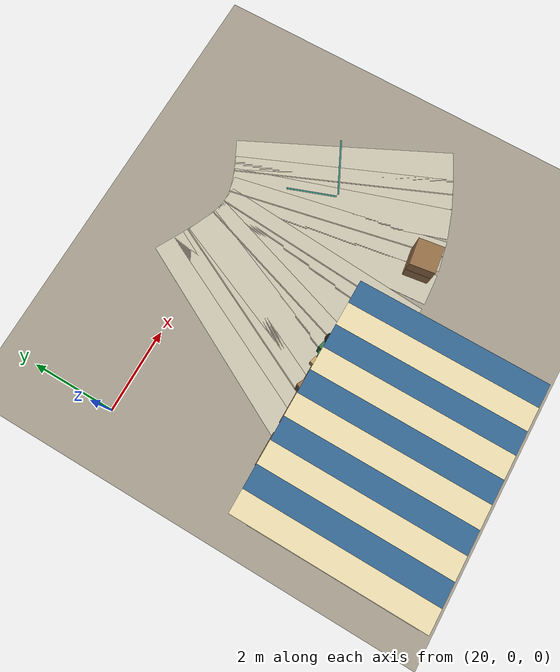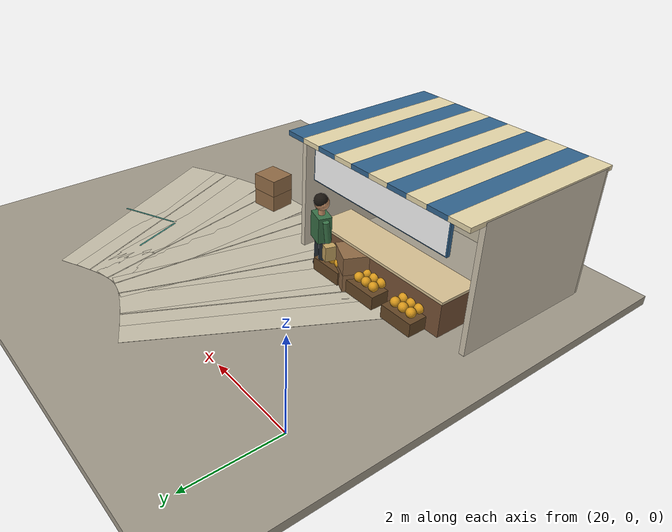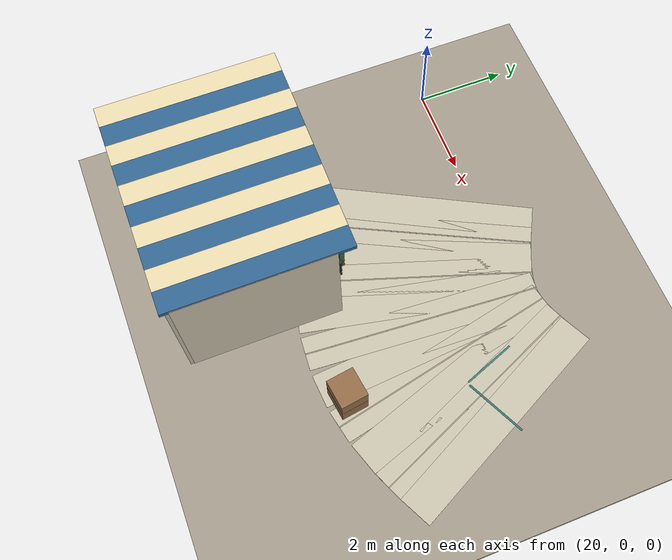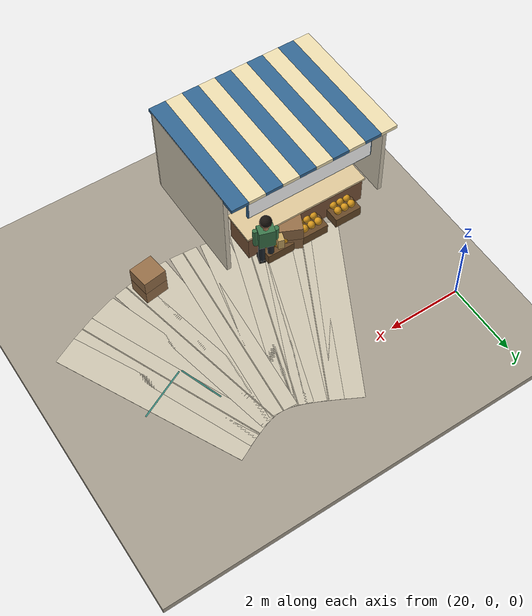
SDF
<sdf version="1.10">
 <world name="swan_market">
  <model name="ground">
   <static>true</static>
   <pose>15 0 -0.1 0 0 0</pose>
   <link name="body">
    <collision name="box_collision"><geometry><box><size>46 24 0.2</size></box></geometry></collision>
    <visual name="box_visual">
     <geometry><box><size>46 24 0.2</size></box></geometry>
     <material><ambient>0.64 0.61 0.55 1</ambient><diffuse>0.64 0.61 0.55 1</diffuse></material>
    </visual>
   </link>
  </model>
  <model name="market_paving_49">
   <static>true</static>
   <pose>22.75 -1.2978 0.002 0 0 -0.48699</pose>
   <link name="body">
    <visual name="box_visual">
     <geometry><box><size>0.75 5.2 0.004</size></box></geometry>
     <material><ambient>0.79 0.76 0.68 1</ambient><diffuse>0.79 0.76 0.68 1</diffuse></material>
    </visual>
   </link>
  </model>
  <model name="market_paving_50">
   <static>true</static>
   <pose>23.25 -1.5562 0.002 0 0 -0.46221</pose>
   <link name="body">
    <visual name="box_visual">
     <geometry><box><size>0.75 5.2 0.004</size></box></geometry>
     <material><ambient>0.79 0.76 0.68 1</ambient><diffuse>0.79 0.76 0.68 1</diffuse></material>
    </visual>
   </link>
  </model>
  <model name="paving_joint_50">
   <static>true</static>
   <pose>23.25 -1.5562 0.0045 0 0 -0.46221</pose>
   <link name="body">
    <visual name="box_visual">
     <geometry><box><size>0.025 5.2 0.001</size></box></geometry>
     <material><ambient>0.67 0.64 0.57 1</ambient><diffuse>0.67 0.64 0.57 1</diffuse></material>
    </visual>
   </link>
  </model>
  <model name="market_paving_51">
   <static>true</static>
   <pose>23.75 -1.7901 0.002 0 0 -0.40758</pose>
   <link name="body">
    <visual name="box_visual">
     <geometry><box><size>0.75 5.2 0.004</size></box></geometry>
     <material><ambient>0.79 0.76 0.68 1</ambient><diffuse>0.79 0.76 0.68 1</diffuse></material>
    </visual>
   </link>
  </model>
  <model name="market_paving_52">
   <static>true</static>
   <pose>24.25 -1.9827 0.002 0 0 -0.32217</pose>
   <link name="body">
    <visual name="box_visual">
     <geometry><box><size>0.75 5.2 0.004</size></box></geometry>
     <material><ambient>0.79 0.76 0.68 1</ambient><diffuse>0.79 0.76 0.68 1</diffuse></material>
    </visual>
   </link>
  </model>
  <model name="paving_joint_52">
   <static>true</static>
   <pose>24.25 -1.9827 0.0045 0 0 -0.32217</pose>
   <link name="body">
    <visual name="box_visual">
     <geometry><box><size>0.025 5.2 0.001</size></box></geometry>
     <material><ambient>0.67 0.64 0.57 1</ambient><diffuse>0.67 0.64 0.57 1</diffuse></material>
    </visual>
   </link>
  </model>
  <model name="market_paving_53">
   <static>true</static>
   <pose>24.75 -2.1197 0.002 0 0 -0.2079</pose>
   <link name="body">
    <visual name="box_visual">
     <geometry><box><size>0.75 5.2 0.004</size></box></geometry>
     <material><ambient>0.79 0.76 0.68 1</ambient><diffuse>0.79 0.76 0.68 1</diffuse></material>
    </visual>
   </link>
  </model>
  <model name="market_paving_54">
   <static>true</static>
   <pose>25.25 -2.191 0.002 0 0 -0.072021</pose>
   <link name="body">
    <visual name="box_visual">
     <geometry><box><size>0.75 5.2 0.004</size></box></geometry>
     <material><ambient>0.79 0.76 0.68 1</ambient><diffuse>0.79 0.76 0.68 1</diffuse></material>
    </visual>
   </link>
  </model>
  <model name="paving_joint_54">
   <static>true</static>
   <pose>25.25 -2.191 0.0045 0 0 -0.072021</pose>
   <link name="body">
    <visual name="box_visual">
     <geometry><box><size>0.025 5.2 0.001</size></box></geometry>
     <material><ambient>0.67 0.64 0.57 1</ambient><diffuse>0.67 0.64 0.57 1</diffuse></material>
    </visual>
   </link>
  </model>
  <model name="market_paving_55">
   <static>true</static>
   <pose>25.75 -2.191 0.002 0 0 0.072021</pose>
   <link name="body">
    <visual name="box_visual">
     <geometry><box><size>0.75 5.2 0.004</size></box></geometry>
     <material><ambient>0.79 0.76 0.68 1</ambient><diffuse>0.79 0.76 0.68 1</diffuse></material>
    </visual>
   </link>
  </model>
  <model name="market_paving_56">
   <static>true</static>
   <pose>26.25 -2.1197 0.002 0 0 0.2079</pose>
   <link name="body">
    <visual name="box_visual">
     <geometry><box><size>0.75 5.2 0.004</size></box></geometry>
     <material><ambient>0.79 0.76 0.68 1</ambient><diffuse>0.79 0.76 0.68 1</diffuse></material>
    </visual>
   </link>
  </model>
  <model name="paving_joint_56">
   <static>true</static>
   <pose>26.25 -2.1197 0.0045 0 0 0.2079</pose>
   <link name="body">
    <visual name="box_visual">
     <geometry><box><size>0.025 5.2 0.001</size></box></geometry>
     <material><ambient>0.67 0.64 0.57 1</ambient><diffuse>0.67 0.64 0.57 1</diffuse></material>
    </visual>
   </link>
  </model>
  <model name="market_paving_57">
   <static>true</static>
   <pose>26.75 -1.9827 0.002 0 0 0.32217</pose>
   <link name="body">
    <visual name="box_visual">
     <geometry><box><size>0.75 5.2 0.004</size></box></geometry>
     <material><ambient>0.79 0.76 0.68 1</ambient><diffuse>0.79 0.76 0.68 1</diffuse></material>
    </visual>
   </link>
  </model>
  <model name="market_paving_58">
   <static>true</static>
   <pose>27.25 -1.7901 0.002 0 0 0.40758</pose>
   <link name="body">
    <visual name="box_visual">
     <geometry><box><size>0.75 5.2 0.004</size></box></geometry>
     <material><ambient>0.79 0.76 0.68 1</ambient><diffuse>0.79 0.76 0.68 1</diffuse></material>
    </visual>
   </link>
  </model>
  <model name="paving_joint_58">
   <static>true</static>
   <pose>27.25 -1.7901 0.0045 0 0 0.40758</pose>
   <link name="body">
    <visual name="box_visual">
     <geometry><box><size>0.025 5.2 0.001</size></box></geometry>
     <material><ambient>0.67 0.64 0.57 1</ambient><diffuse>0.67 0.64 0.57 1</diffuse></material>
    </visual>
   </link>
  </model>
  <model name="market_paving_59">
   <static>true</static>
   <pose>27.75 -1.5562 0.002 0 0 0.46221</pose>
   <link name="body">
    <visual name="box_visual">
     <geometry><box><size>0.75 5.2 0.004</size></box></geometry>
     <material><ambient>0.79 0.76 0.68 1</ambient><diffuse>0.79 0.76 0.68 1</diffuse></material>
    </visual>
   </link>
  </model>
  <model name="stall_06">
   <static>true</static>
   <pose>22 -5.3529 0 0 0 0</pose>
   <link name="body">
    <collision name="rear_collision">
     <pose>0 -1.65 1.4 0 0 0</pose>
     <geometry><box><size>4.8 0.15 2.8</size></box></geometry>
    </collision>
    <visual name="rear_visual">
     <pose>0 -1.65 1.4 0 0 0</pose>
     <geometry><box><size>4.8 0.15 2.8</size></box></geometry>
     <material><ambient>0.78 0.74 0.65 1</ambient><diffuse>0.78 0.74 0.65 1</diffuse></material>
    </visual>
    <collision name="side_-2.35_collision">
     <pose>-2.35 0 1.4 0 0 0</pose>
     <geometry><box><size>0.12 3.3 2.8</size></box></geometry>
    </collision>
    <visual name="side_-2.35_visual">
     <pose>-2.35 0 1.4 0 0 0</pose>
     <geometry><box><size>0.12 3.3 2.8</size></box></geometry>
     <material><ambient>0.81 0.77 0.69 1</ambient><diffuse>0.81 0.77 0.69 1</diffuse></material>
    </visual>
    <collision name="side_2.35_collision">
     <pose>2.35 0 1.4 0 0 0</pose>
     <geometry><box><size>0.12 3.3 2.8</size></box></geometry>
    </collision>
    <visual name="side_2.35_visual">
     <pose>2.35 0 1.4 0 0 0</pose>
     <geometry><box><size>0.12 3.3 2.8</size></box></geometry>
     <material><ambient>0.81 0.77 0.69 1</ambient><diffuse>0.81 0.77 0.69 1</diffuse></material>
    </visual>
    <collision name="counter_collision">
     <pose>0 1.22 0.4 0 0 0</pose>
     <geometry><box><size>3.5 0.85 0.8</size></box></geometry>
    </collision>
    <visual name="counter_visual">
     <pose>0 1.22 0.4 0 0 0</pose>
     <geometry><box><size>3.5 0.85 0.8</size></box></geometry>
     <material><ambient>0.47 0.32 0.21 1</ambient><diffuse>0.47 0.32 0.21 1</diffuse></material>
    </visual>
    <collision name="counter_top_collision">
     <pose>0 1.22 0.83 0 0 0</pose>
     <geometry><box><size>3.6 0.95 0.06</size></box></geometry>
    </collision>
    <visual name="counter_top_visual">
     <pose>0 1.22 0.83 0 0 0</pose>
     <geometry><box><size>3.6 0.95 0.06</size></box></geometry>
     <material><ambient>0.86 0.77 0.59 1</ambient><diffuse>0.86 0.77 0.59 1</diffuse></material>
    </visual>
    <collision name="awning_0_collision">
     <pose>-2.16 0.1 2.78 0 0 0</pose>
     <geometry><box><size>0.48 3.85 0.1</size></box></geometry>
    </collision>
    <visual name="awning_0_visual">
     <pose>-2.16 0.1 2.78 0 0 0</pose>
     <geometry><box><size>0.48 3.85 0.1</size></box></geometry>
     <material><ambient>0.92 0.86 0.68 1</ambient><diffuse>0.92 0.86 0.68 1</diffuse></material>
    </visual>
    <collision name="awning_1_collision">
     <pose>-1.68 0.1 2.78 0 0 0</pose>
     <geometry><box><size>0.48 3.85 0.1</size></box></geometry>
    </collision>
    <visual name="awning_1_visual">
     <pose>-1.68 0.1 2.78 0 0 0</pose>
     <geometry><box><size>0.48 3.85 0.1</size></box></geometry>
     <material><ambient>0.2 0.4 0.57 1</ambient><diffuse>0.2 0.4 0.57 1</diffuse></material>
    </visual>
    <collision name="awning_2_collision">
     <pose>-1.2 0.1 2.78 0 0 0</pose>
     <geometry><box><size>0.48 3.85 0.1</size></box></geometry>
    </collision>
    <visual name="awning_2_visual">
     <pose>-1.2 0.1 2.78 0 0 0</pose>
     <geometry><box><size>0.48 3.85 0.1</size></box></geometry>
     <material><ambient>0.92 0.86 0.68 1</ambient><diffuse>0.92 0.86 0.68 1</diffuse></material>
    </visual>
    <collision name="awning_3_collision">
     <pose>-0.72 0.1 2.78 0 0 0</pose>
     <geometry><box><size>0.48 3.85 0.1</size></box></geometry>
    </collision>
    <visual name="awning_3_visual">
     <pose>-0.72 0.1 2.78 0 0 0</pose>
     <geometry><box><size>0.48 3.85 0.1</size></box></geometry>
     <material><ambient>0.2 0.4 0.57 1</ambient><diffuse>0.2 0.4 0.57 1</diffuse></material>
    </visual>
    <collision name="awning_4_collision">
     <pose>-0.24 0.1 2.78 0 0 0</pose>
     <geometry><box><size>0.48 3.85 0.1</size></box></geometry>
    </collision>
    <visual name="awning_4_visual">
     <pose>-0.24 0.1 2.78 0 0 0</pose>
     <geometry><box><size>0.48 3.85 0.1</size></box></geometry>
     <material><ambient>0.92 0.86 0.68 1</ambient><diffuse>0.92 0.86 0.68 1</diffuse></material>
    </visual>
    <collision name="awning_5_collision">
     <pose>0.24 0.1 2.78 0 0 0</pose>
     <geometry><box><size>0.48 3.85 0.1</size></box></geometry>
    </collision>
    <visual name="awning_5_visual">
     <pose>0.24 0.1 2.78 0 0 0</pose>
     <geometry><box><size>0.48 3.85 0.1</size></box></geometry>
     <material><ambient>0.2 0.4 0.57 1</ambient><diffuse>0.2 0.4 0.57 1</diffuse></material>
    </visual>
    <collision name="awning_6_collision">
     <pose>0.72 0.1 2.78 0 0 0</pose>
     <geometry><box><size>0.48 3.85 0.1</size></box></geometry>
    </collision>
    <visual name="awning_6_visual">
     <pose>0.72 0.1 2.78 0 0 0</pose>
     <geometry><box><size>0.48 3.85 0.1</size></box></geometry>
     <material><ambient>0.92 0.86 0.68 1</ambient><diffuse>0.92 0.86 0.68 1</diffuse></material>
    </visual>
    <collision name="awning_7_collision">
     <pose>1.2 0.1 2.78 0 0 0</pose>
     <geometry><box><size>0.48 3.85 0.1</size></box></geometry>
    </collision>
    <visual name="awning_7_visual">
     <pose>1.2 0.1 2.78 0 0 0</pose>
     <geometry><box><size>0.48 3.85 0.1</size></box></geometry>
     <material><ambient>0.2 0.4 0.57 1</ambient><diffuse>0.2 0.4 0.57 1</diffuse></material>
    </visual>
    <collision name="awning_8_collision">
     <pose>1.68 0.1 2.78 0 0 0</pose>
     <geometry><box><size>0.48 3.85 0.1</size></box></geometry>
    </collision>
    <visual name="awning_8_visual">
     <pose>1.68 0.1 2.78 0 0 0</pose>
     <geometry><box><size>0.48 3.85 0.1</size></box></geometry>
     <material><ambient>0.92 0.86 0.68 1</ambient><diffuse>0.92 0.86 0.68 1</diffuse></material>
    </visual>
    <collision name="awning_9_collision">
     <pose>2.16 0.1 2.78 0 0 0</pose>
     <geometry><box><size>0.48 3.85 0.1</size></box></geometry>
    </collision>
    <visual name="awning_9_visual">
     <pose>2.16 0.1 2.78 0 0 0</pose>
     <geometry><box><size>0.48 3.85 0.1</size></box></geometry>
     <material><ambient>0.2 0.4 0.57 1</ambient><diffuse>0.2 0.4 0.57 1</diffuse></material>
    </visual>
    <collision name="crate_-1_collision">
     <pose>-1.04 1.77 0.15 0 0 0</pose>
     <geometry><box><size>0.78 0.6 0.3</size></box></geometry>
    </collision>
    <visual name="crate_-1_visual">
     <pose>-1.04 1.77 0.15 0 0 0</pose>
     <geometry><box><size>0.78 0.6 0.3</size></box></geometry>
     <material><ambient>0.4 0.28 0.15 1</ambient><diffuse>0.4 0.28 0.15 1</diffuse></material>
    </visual>
    <visual name="produce_-1_0_visual">
     <pose>-1.25 1.66 0.39 0 0 0</pose>
     <geometry><sphere><radius>0.105</radius></sphere></geometry>
     <material><ambient>0.84 0.59 0.1 1</ambient><diffuse>0.84 0.59 0.1 1</diffuse></material>
    </visual>
    <visual name="produce_-1_1_visual">
     <pose>-1.04 1.66 0.39 0 0 0</pose>
     <geometry><sphere><radius>0.105</radius></sphere></geometry>
     <material><ambient>0.84 0.59 0.1 1</ambient><diffuse>0.84 0.59 0.1 1</diffuse></material>
    </visual>
    <visual name="produce_-1_2_visual">
     <pose>-0.83 1.66 0.39 0 0 0</pose>
     <geometry><sphere><radius>0.105</radius></sphere></geometry>
     <material><ambient>0.84 0.59 0.1 1</ambient><diffuse>0.84 0.59 0.1 1</diffuse></material>
    </visual>
    <visual name="produce_-1_3_visual">
     <pose>-1.25 1.88 0.39 0 0 0</pose>
     <geometry><sphere><radius>0.105</radius></sphere></geometry>
     <material><ambient>0.84 0.59 0.1 1</ambient><diffuse>0.84 0.59 0.1 1</diffuse></material>
    </visual>
    <visual name="produce_-1_4_visual">
     <pose>-1.04 1.88 0.39 0 0 0</pose>
     <geometry><sphere><radius>0.105</radius></sphere></geometry>
     <material><ambient>0.84 0.59 0.1 1</ambient><diffuse>0.84 0.59 0.1 1</diffuse></material>
    </visual>
    <visual name="produce_-1_5_visual">
     <pose>-0.83 1.88 0.39 0 0 0</pose>
     <geometry><sphere><radius>0.105</radius></sphere></geometry>
     <material><ambient>0.84 0.59 0.1 1</ambient><diffuse>0.84 0.59 0.1 1</diffuse></material>
    </visual>
    <collision name="crate_0_collision">
     <pose>0 1.77 0.15 0 0 0</pose>
     <geometry><box><size>0.78 0.6 0.3</size></box></geometry>
    </collision>
    <visual name="crate_0_visual">
     <pose>0 1.77 0.15 0 0 0</pose>
     <geometry><box><size>0.78 0.6 0.3</size></box></geometry>
     <material><ambient>0.4 0.28 0.15 1</ambient><diffuse>0.4 0.28 0.15 1</diffuse></material>
    </visual>
    <visual name="produce_0_0_visual">
     <pose>-0.21 1.66 0.39 0 0 0</pose>
     <geometry><sphere><radius>0.105</radius></sphere></geometry>
     <material><ambient>0.84 0.59 0.1 1</ambient><diffuse>0.84 0.59 0.1 1</diffuse></material>
    </visual>
    <visual name="produce_0_1_visual">
     <pose>0 1.66 0.39 0 0 0</pose>
     <geometry><sphere><radius>0.105</radius></sphere></geometry>
     <material><ambient>0.84 0.59 0.1 1</ambient><diffuse>0.84 0.59 0.1 1</diffuse></material>
    </visual>
    <visual name="produce_0_2_visual">
     <pose>0.21 1.66 0.39 0 0 0</pose>
     <geometry><sphere><radius>0.105</radius></sphere></geometry>
     <material><ambient>0.84 0.59 0.1 1</ambient><diffuse>0.84 0.59 0.1 1</diffuse></material>
    </visual>
    <visual name="produce_0_3_visual">
     <pose>-0.21 1.88 0.39 0 0 0</pose>
     <geometry><sphere><radius>0.105</radius></sphere></geometry>
     <material><ambient>0.84 0.59 0.1 1</ambient><diffuse>0.84 0.59 0.1 1</diffuse></material>
    </visual>
    <visual name="produce_0_4_visual">
     <pose>0 1.88 0.39 0 0 0</pose>
     <geometry><sphere><radius>0.105</radius></sphere></geometry>
     <material><ambient>0.84 0.59 0.1 1</ambient><diffuse>0.84 0.59 0.1 1</diffuse></material>
    </visual>
    <visual name="produce_0_5_visual">
     <pose>0.21 1.88 0.39 0 0 0</pose>
     <geometry><sphere><radius>0.105</radius></sphere></geometry>
     <material><ambient>0.84 0.59 0.1 1</ambient><diffuse>0.84 0.59 0.1 1</diffuse></material>
    </visual>
    <collision name="crate_1_collision">
     <pose>1.04 1.77 0.15 0 0 0</pose>
     <geometry><box><size>0.78 0.6 0.3</size></box></geometry>
    </collision>
    <visual name="crate_1_visual">
     <pose>1.04 1.77 0.15 0 0 0</pose>
     <geometry><box><size>0.78 0.6 0.3</size></box></geometry>
     <material><ambient>0.4 0.28 0.15 1</ambient><diffuse>0.4 0.28 0.15 1</diffuse></material>
    </visual>
    <visual name="produce_1_0_visual">
     <pose>0.83 1.66 0.39 0 0 0</pose>
     <geometry><sphere><radius>0.105</radius></sphere></geometry>
     <material><ambient>0.84 0.59 0.1 1</ambient><diffuse>0.84 0.59 0.1 1</diffuse></material>
    </visual>
    <visual name="produce_1_1_visual">
     <pose>1.04 1.66 0.39 0 0 0</pose>
     <geometry><sphere><radius>0.105</radius></sphere></geometry>
     <material><ambient>0.84 0.59 0.1 1</ambient><diffuse>0.84 0.59 0.1 1</diffuse></material>
    </visual>
    <visual name="produce_1_2_visual">
     <pose>1.25 1.66 0.39 0 0 0</pose>
     <geometry><sphere><radius>0.105</radius></sphere></geometry>
     <material><ambient>0.84 0.59 0.1 1</ambient><diffuse>0.84 0.59 0.1 1</diffuse></material>
    </visual>
    <visual name="produce_1_3_visual">
     <pose>0.83 1.88 0.39 0 0 0</pose>
     <geometry><sphere><radius>0.105</radius></sphere></geometry>
     <material><ambient>0.84 0.59 0.1 1</ambient><diffuse>0.84 0.59 0.1 1</diffuse></material>
    </visual>
    <visual name="produce_1_4_visual">
     <pose>1.04 1.88 0.39 0 0 0</pose>
     <geometry><sphere><radius>0.105</radius></sphere></geometry>
     <material><ambient>0.84 0.59 0.1 1</ambient><diffuse>0.84 0.59 0.1 1</diffuse></material>
    </visual>
    <visual name="produce_1_5_visual">
     <pose>1.25 1.88 0.39 0 0 0</pose>
     <geometry><sphere><radius>0.105</radius></sphere></geometry>
     <material><ambient>0.84 0.59 0.1 1</ambient><diffuse>0.84 0.59 0.1 1</diffuse></material>
    </visual>
   </link>
  </model>
  <model name="signboard_6">
   <static>true</static>
   <pose>22 -3.5929 2.24 0 0 0</pose>
   <link name="body">
    <collision name="box_collision"><geometry><box><size>3.65 0.08 0.72</size></box></geometry></collision>
    <visual name="box_visual">
     <geometry><box><size>3.65 0.08 0.72</size></box></geometry>
     <material><ambient>0.2 0.4 0.57 1</ambient><diffuse>0.2 0.4 0.57 1</diffuse></material>
    </visual>
   </link>
  </model>
  <model name="sign_shop_6">
   <static>true</static>
   <pose>22 -3.5449 2.24 0 0 3.1416</pose>
   <link name="body">
    <visual name="lettering">
     <geometry>
      <mesh><uri>model://swan_market_assets/meshes/shop_6.dae</uri><scale>3.6 1 0.675</scale></mesh>
     </geometry>
     <material>
      <ambient>1 1 1 1</ambient>
      <diffuse>1 1 1 1</diffuse>
      <emissive>0 0 0 1</emissive>
      <pbr>
       <metal>
        <albedo_map>model://swan_market_assets/materials/textures/shop_6.png</albedo_map>
        <metalness>0</metalness>
        <roughness>1</roughness>
       </metal>
      </pbr>
     </material>
    </visual>
   </link>
  </model>
  <model name="stock_stack_2_0">
   <static>true</static>
   <pose>22.587 -3.6237 0.2 0 0 -0.43872</pose>
   <link name="body">
    <collision name="box_collision"><geometry><box><size>0.65 0.6 0.4</size></box></geometry></collision>
    <visual name="box_visual">
     <geometry><box><size>0.65 0.6 0.4</size></box></geometry>
     <material><ambient>0.58 0.43 0.28 1</ambient><diffuse>0.58 0.43 0.28 1</diffuse></material>
    </visual>
   </link>
  </model>
  <model name="stock_stack_2_1">
   <static>true</static>
   <pose>22.587 -3.6237 0.6 0 0 -0.43872</pose>
   <link name="body">
    <collision name="box_collision"><geometry><box><size>0.65 0.6 0.4</size></box></geometry></collision>
    <visual name="box_visual">
     <geometry><box><size>0.65 0.6 0.4</size></box></geometry>
     <material><ambient>0.58 0.43 0.28 1</ambient><diffuse>0.58 0.43 0.28 1</diffuse></material>
    </visual>
   </link>
  </model>
  <model name="stock_stack_3_0">
   <static>true</static>
   <pose>26.304 -4.2924 0.2 0 0 0.14195</pose>
   <link name="body">
    <collision name="box_collision"><geometry><box><size>0.65 0.6 0.4</size></box></geometry></collision>
    <visual name="box_visual">
     <geometry><box><size>0.65 0.6 0.4</size></box></geometry>
     <material><ambient>0.58 0.43 0.28 1</ambient><diffuse>0.58 0.43 0.28 1</diffuse></material>
    </visual>
   </link>
  </model>
  <model name="stock_stack_3_1">
   <static>true</static>
   <pose>26.304 -4.2924 0.6 0 0 0.14195</pose>
   <link name="body">
    <collision name="box_collision"><geometry><box><size>0.65 0.6 0.4</size></box></geometry></collision>
    <visual name="box_visual">
     <geometry><box><size>0.65 0.6 0.4</size></box></geometry>
     <material><ambient>0.58 0.43 0.28 1</ambient><diffuse>0.58 0.43 0.28 1</diffuse></material>
    </visual>
   </link>
  </model>
  <model name="crowd_09">
   <static>true</static>
   <pose>23.405 -3.4316 0 0 0 -1.8687</pose>
   <link name="body">
    <collision name="leg_-1_collision">
     <pose>0 -0.12 0.4 0 0 0</pose>
     <geometry><cylinder><radius>0.085</radius><length>0.68</length></cylinder></geometry>
    </collision>
    <visual name="leg_-1_visual">
     <pose>0 -0.12 0.4 0 0 0</pose>
     <geometry><cylinder><radius>0.085</radius><length>0.68</length></cylinder></geometry>
     <material><ambient>0.12 0.15 0.18 1</ambient><diffuse>0.12 0.15 0.18 1</diffuse></material>
    </visual>
    <collision name="shoe_-1_collision">
     <pose>0.06 -0.12 0.055 0 0 0</pose>
     <geometry><box><size>0.28 0.17 0.11</size></box></geometry>
    </collision>
    <visual name="shoe_-1_visual">
     <pose>0.06 -0.12 0.055 0 0 0</pose>
     <geometry><box><size>0.28 0.17 0.11</size></box></geometry>
     <material><ambient>0.08 0.07 0.06 1</ambient><diffuse>0.08 0.07 0.06 1</diffuse></material>
    </visual>
    <collision name="arm_-1_collision">
     <pose>0.02 -0.27 1.02 0 -0.12 0</pose>
     <geometry><cylinder><radius>0.068</radius><length>0.48</length></cylinder></geometry>
    </collision>
    <visual name="arm_-1_visual">
     <pose>0.02 -0.27 1.02 0 -0.12 0</pose>
     <geometry><cylinder><radius>0.068</radius><length>0.48</length></cylinder></geometry>
     <material><ambient>0.23 0.46 0.29 1</ambient><diffuse>0.23 0.46 0.29 1</diffuse></material>
    </visual>
    <collision name="leg_1_collision">
     <pose>0 0.12 0.4 0 0 0</pose>
     <geometry><cylinder><radius>0.085</radius><length>0.68</length></cylinder></geometry>
    </collision>
    <visual name="leg_1_visual">
     <pose>0 0.12 0.4 0 0 0</pose>
     <geometry><cylinder><radius>0.085</radius><length>0.68</length></cylinder></geometry>
     <material><ambient>0.12 0.15 0.18 1</ambient><diffuse>0.12 0.15 0.18 1</diffuse></material>
    </visual>
    <collision name="shoe_1_collision">
     <pose>0.06 0.12 0.055 0 0 0</pose>
     <geometry><box><size>0.28 0.17 0.11</size></box></geometry>
    </collision>
    <visual name="shoe_1_visual">
     <pose>0.06 0.12 0.055 0 0 0</pose>
     <geometry><box><size>0.28 0.17 0.11</size></box></geometry>
     <material><ambient>0.08 0.07 0.06 1</ambient><diffuse>0.08 0.07 0.06 1</diffuse></material>
    </visual>
    <collision name="arm_1_collision">
     <pose>0.02 0.27 1.02 0 0.12 0</pose>
     <geometry><cylinder><radius>0.068</radius><length>0.48</length></cylinder></geometry>
    </collision>
    <visual name="arm_1_visual">
     <pose>0.02 0.27 1.02 0 0.12 0</pose>
     <geometry><cylinder><radius>0.068</radius><length>0.48</length></cylinder></geometry>
     <material><ambient>0.23 0.46 0.29 1</ambient><diffuse>0.23 0.46 0.29 1</diffuse></material>
    </visual>
    <collision name="torso_collision">
     <pose>0 0 1.02 0 0 0</pose>
     <geometry><box><size>0.3 0.43 0.58</size></box></geometry>
    </collision>
    <visual name="torso_visual">
     <pose>0 0 1.02 0 0 0</pose>
     <geometry><box><size>0.3 0.43 0.58</size></box></geometry>
     <material><ambient>0.23 0.46 0.29 1</ambient><diffuse>0.23 0.46 0.29 1</diffuse></material>
    </visual>
    <visual name="neck_visual">
     <pose>0 0 1.37 0 0 0</pose>
     <geometry><cylinder><radius>0.07</radius><length>0.13</length></cylinder></geometry>
     <material><ambient>0.77 0.56 0.4 1</ambient><diffuse>0.77 0.56 0.4 1</diffuse></material>
    </visual>
    <collision name="head_collision">
     <pose>0 0 1.57 0 0 0</pose>
     <geometry><sphere><radius>0.16</radius></sphere></geometry>
    </collision>
    <visual name="head_visual">
     <pose>0 0 1.57 0 0 0</pose>
     <geometry><sphere><radius>0.16</radius></sphere></geometry>
     <material><ambient>0.77 0.56 0.4 1</ambient><diffuse>0.77 0.56 0.4 1</diffuse></material>
    </visual>
    <visual name="hair_visual">
     <pose>-0.025 0 1.63 0 0 0</pose>
     <geometry><sphere><radius>0.155</radius></sphere></geometry>
     <material><ambient>0.1 0.08 0.06 1</ambient><diffuse>0.1 0.08 0.06 1</diffuse></material>
    </visual>
    <collision name="shopping_bag_collision">
     <pose>0.04 -0.38 0.6 0 0 0</pose>
     <geometry><box><size>0.24 0.17 0.33</size></box></geometry>
    </collision>
    <visual name="shopping_bag_visual">
     <pose>0.04 -0.38 0.6 0 0 0</pose>
     <geometry><box><size>0.24 0.17 0.33</size></box></geometry>
     <material><ambient>0.78 0.65 0.39 1</ambient><diffuse>0.78 0.65 0.39 1</diffuse></material>
    </visual>
   </link>
  </model>
  <model name="stop_1_-0.7_0">
   <static>true</static>
   <pose>26.659 -1.2728 0.009 0 0 0.35099</pose>
   <link name="body">
    <visual name="box_visual">
     <geometry><box><size>0.04 1.2 0.002</size></box></geometry>
     <material><ambient>0.22 0.52 0.47 1</ambient><diffuse>0.22 0.52 0.47 1</diffuse></material>
    </visual>
   </link>
  </model>
  <model name="stop_1_0_-0.6">
   <static>true</static>
   <pose>27.557 -1.5397 0.009 0 0 0.44903</pose>
   <link name="body">
    <visual name="box_visual">
     <geometry><box><size>1.4 0.04 0.002</size></box></geometry>
     <material><ambient>0.22 0.52 0.47 1</ambient><diffuse>0.22 0.52 0.47 1</diffuse></material>
    </visual>
   </link>
  </model>
 </world>
</sdf>
